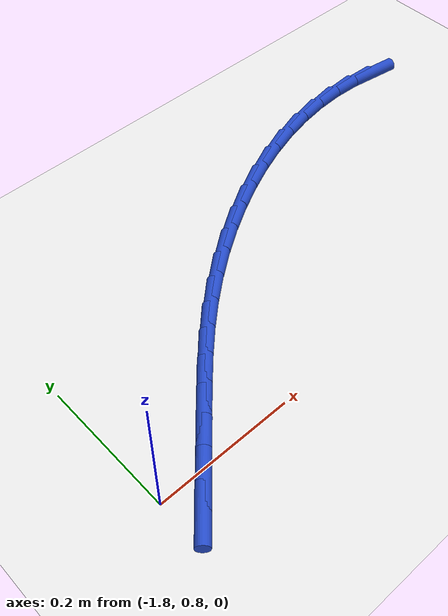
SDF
<sdf version="1.6">
 <world name="default">
  <model name="ground_plane">
   <static>1</static>
   <link name="link">
    <collision name="collision">
     <geometry><plane><normal>0 0 1</normal><size>100 100</size></plane></geometry>
     <surface><friction><ode><mu>100</mu><mu2>50</mu2></ode></friction></surface>
    </collision>
    <visual name="visual">
     <cast_shadows>0</cast_shadows>
     <geometry><plane><normal>0 0 1</normal><size>100 100</size></plane></geometry>
     <material>
      <script><uri>file://media/materials/scripts/gazebo.material</uri><name>Gazebo/WhiteGlow</name></script>
     </material>
    </visual>
   </link>
  </model>
  <model name="line">
   <link name="link_38">
    <pose>-1.0377735951084934 1.160072336522778 0.01 0 1.57 -0.1422656179847581</pose>
    <collision name="collision">
     <geometry><cylinder><radius>0.01</radius><length>0.08</length></cylinder></geometry>
    </collision>
    <visual name="visual">
     <material>
      <script><name>Gazebo/Blue</name><uri>file://media/materials/scripts/gazebo.material</uri></script>
     </material>
     <geometry><cylinder><radius>0.01</radius><length>0.08</length></cylinder></geometry>
    </visual>
   </link>
   <link name="link_39">
    <pose>-1.0797187879673418 1.1660802827238308 0.01 0 1.57 -0.037565053827910075</pose>
    <collision name="collision">
     <geometry><cylinder><radius>0.01</radius><length>0.08</length></cylinder></geometry>
    </collision>
    <visual name="visual">
     <material>
      <script><name>Gazebo/Blue</name><uri>file://media/materials/scripts/gazebo.material</uri></script>
     </material>
     <geometry><cylinder><radius>0.01</radius><length>0.08</length></cylinder></geometry>
    </visual>
   </link>
   <link name="link_40">
    <pose>-1.1223175922608086 1.167681262236125 0.01 0 1.57 0.05868972124511242</pose>
    <collision name="collision">
     <geometry><cylinder><radius>0.01</radius><length>0.08</length></cylinder></geometry>
    </collision>
    <visual name="visual">
     <material>
      <script><name>Gazebo/Blue</name><uri>file://media/materials/scripts/gazebo.material</uri></script>
     </material>
     <geometry><cylinder><radius>0.01</radius><length>0.08</length></cylinder></geometry>
    </visual>
   </link>
   <link name="link_41">
    <pose>-1.165336644057373 1.1651535832285251 0.01 0 1.57 0.146560812369361</pose>
    <collision name="collision">
     <geometry><cylinder><radius>0.01</radius><length>0.08</length></cylinder></geometry>
    </collision>
    <visual name="visual">
     <material>
      <script><name>Gazebo/Blue</name><uri>file://media/materials/scripts/gazebo.material</uri></script>
     </material>
     <geometry><cylinder><radius>0.01</radius><length>0.08</length></cylinder></geometry>
    </visual>
   </link>
   <link name="link_42">
    <pose>-1.2085425794255127 1.158775553869897 0.01 0 1.57 0.2265831939596096</pose>
    <collision name="collision">
     <geometry><cylinder><radius>0.01</radius><length>0.08</length></cylinder></geometry>
    </collision>
    <visual name="visual">
     <material>
      <script><name>Gazebo/Blue</name><uri>file://media/materials/scripts/gazebo.material</uri></script>
     </material>
     <geometry><cylinder><radius>0.01</radius><length>0.08</length></cylinder></geometry>
    </visual>
   </link>
   <link name="link_43">
    <pose>-1.2517020344337073 1.1488254823291062 0.01 0 1.57 0.29956547524877053</pose>
    <collision name="collision">
     <geometry><cylinder><radius>0.01</radius><length>0.08</length></cylinder></geometry>
    </collision>
    <visual name="visual">
     <material>
      <script><name>Gazebo/Blue</name><uri>file://media/materials/scripts/gazebo.material</uri></script>
     </material>
     <geometry><cylinder><radius>0.01</radius><length>0.08</length></cylinder></geometry>
    </visual>
   </link>
   <link name="link_44">
    <pose>-1.2945816451504368 1.1355816767750189 0.01 0 1.57 0.36644288319329077</pose>
    <collision name="collision">
     <geometry><cylinder><radius>0.01</radius><length>0.08</length></cylinder></geometry>
    </collision>
    <visual name="visual">
     <material>
      <script><name>Gazebo/Blue</name><uri>file://media/materials/scripts/gazebo.material</uri></script>
     </material>
     <geometry><cylinder><radius>0.01</radius><length>0.08</length></cylinder></geometry>
    </visual>
   </link>
   <link name="link_45">
    <pose>-1.3369480476441784 1.1193224453765 0.01 0 1.57 0.42818445335033456</pose>
    <collision name="collision">
     <geometry><cylinder><radius>0.01</radius><length>0.08</length></cylinder></geometry>
    </collision>
    <visual name="visual">
     <material>
      <script><name>Gazebo/Blue</name><uri>file://media/materials/scripts/gazebo.material</uri></script>
     </material>
     <geometry><cylinder><radius>0.01</radius><length>0.08</length></cylinder></geometry>
    </visual>
   </link>
   <link name="link_46">
    <pose>-1.378567877983412 1.100326096302415 0.01 0 1.57 0.48574382314129827</pose>
    <collision name="collision">
     <geometry><cylinder><radius>0.01</radius><length>0.08</length></cylinder></geometry>
    </collision>
    <visual name="visual">
     <material>
      <script><name>Gazebo/Blue</name><uri>file://media/materials/scripts/gazebo.material</uri></script>
     </material>
     <geometry><cylinder><radius>0.01</radius><length>0.08</length></cylinder></geometry>
    </visual>
   </link>
   <link name="link_47">
    <pose>-1.4192077722366159 1.07887093772163 0.01 0 1.57 0.5400408883932873</pose>
    <collision name="collision">
     <geometry><cylinder><radius>0.01</radius><length>0.08</length></cylinder></geometry>
    </collision>
    <visual name="visual">
     <material>
      <script><name>Gazebo/Blue</name><uri>file://media/materials/scripts/gazebo.material</uri></script>
     </material>
     <geometry><cylinder><radius>0.01</radius><length>0.08</length></cylinder></geometry>
    </visual>
   </link>
   <link name="link_48">
    <pose>-1.4586343664722698 1.05523527780301 0.01 0 1.57 0.5919640210015958</pose>
    <collision name="collision">
     <geometry><cylinder><radius>0.01</radius><length>0.08</length></cylinder></geometry>
    </collision>
    <visual name="visual">
     <material>
      <script><name>Gazebo/Blue</name><uri>file://media/materials/scripts/gazebo.material</uri></script>
     </material>
     <geometry><cylinder><radius>0.01</radius><length>0.08</length></cylinder></geometry>
    </visual>
   </link>
   <link name="link_49">
    <pose>-1.4966142967588516 1.0296974247154211 0.01 0 1.57 0.6423861035709708</pose>
    <collision name="collision">
     <geometry><cylinder><radius>0.01</radius><length>0.08</length></cylinder></geometry>
    </collision>
    <visual name="visual">
     <material>
      <script><name>Gazebo/Blue</name><uri>file://media/materials/scripts/gazebo.material</uri></script>
     </material>
     <geometry><cylinder><radius>0.01</radius><length>0.08</length></cylinder></geometry>
    </visual>
   </link>
   <link name="link_50">
    <pose>-1.532914199164841 1.0025356866277286 0.01 0 1.57 0.6921909143759554</pose>
    <collision name="collision">
     <geometry><cylinder><radius>0.01</radius><length>0.08</length></cylinder></geometry>
    </collision>
    <visual name="visual">
     <material>
      <script><name>Gazebo/Blue</name><uri>file://media/materials/scripts/gazebo.material</uri></script>
     </material>
     <geometry><cylinder><radius>0.01</radius><length>0.08</length></cylinder></geometry>
    </visual>
   </link>
   <link name="link_51">
    <pose>-1.5673007097587162 0.9740283717087979 0.01 0 1.57 0.7418429253149657</pose>
    <collision name="collision">
     <geometry><cylinder><radius>0.01</radius><length>0.08</length></cylinder></geometry>
    </collision>
    <visual name="visual">
     <material>
      <script><name>Gazebo/Blue</name><uri>file://media/materials/scripts/gazebo.material</uri></script>
     </material>
     <geometry><cylinder><radius>0.01</radius><length>0.08</length></cylinder></geometry>
    </visual>
   </link>
   <link name="link_52">
    <pose>-1.5995767513322727 0.9444481973041711 0.01 0 1.57 0.785534623938228</pose>
    <collision name="collision">
     <geometry><cylinder><radius>0.01</radius><length>0.08</length></cylinder></geometry>
    </collision>
    <visual name="visual">
     <material>
      <script><name>Gazebo/Blue</name><uri>file://media/materials/scripts/gazebo.material</uri></script>
     </material>
     <geometry><cylinder><radius>0.01</radius><length>0.08</length></cylinder></geometry>
    </visual>
   </link>
   <link name="link_53">
    <pose>-1.6300222513085243 0.9139943869750505 0.01 0 1.57 0.8176490082176219</pose>
    <collision name="collision">
     <geometry><cylinder><radius>0.01</radius><length>0.08</length></cylinder></geometry>
    </collision>
    <visual name="visual">
     <material>
      <script><name>Gazebo/Blue</name><uri>file://media/materials/scripts/gazebo.material</uri></script>
     </material>
     <geometry><cylinder><radius>0.01</radius><length>0.08</length></cylinder></geometry>
    </visual>
   </link>
   <link name="link_54">
    <pose>-1.6592532820447115 0.8828143732481583 0.01 0 1.57 0.837011709031941</pose>
    <collision name="collision">
     <geometry><cylinder><radius>0.01</radius><length>0.08</length></cylinder></geometry>
    </collision>
    <visual name="visual">
     <material>
      <script><name>Gazebo/Blue</name><uri>file://media/materials/scripts/gazebo.material</uri></script>
     </material>
     <geometry><cylinder><radius>0.01</radius><length>0.08</length></cylinder></geometry>
    </visual>
   </link>
   <link name="link_55">
    <pose>-1.6878929444743165 0.851054505732709 0.01 0 1.57 0.8431993129954104</pose>
    <collision name="collision">
     <geometry><cylinder><radius>0.01</radius><length>0.08</length></cylinder></geometry>
    </collision>
    <visual name="visual">
     <material>
      <script><name>Gazebo/Blue</name><uri>file://media/materials/scripts/gazebo.material</uri></script>
     </material>
     <geometry><cylinder><radius>0.01</radius><length>0.08</length></cylinder></geometry>
    </visual>
   </link>
   <link name="link_56">
    <pose>-1.7165643395308186 0.818861134037916 0.01 0 1.57 0.839341410173947</pose>
    <collision name="collision">
     <geometry><cylinder><radius>0.01</radius><length>0.08</length></cylinder></geometry>
    </collision>
    <visual name="visual">
     <material>
      <script><name>Gazebo/Blue</name><uri>file://media/materials/scripts/gazebo.material</uri></script>
     </material>
     <geometry><cylinder><radius>0.01</radius><length>0.08</length></cylinder></geometry>
    </visual>
   </link>
   <link name="link_57">
    <pose>-1.745744537843145 0.7863498661139647 0.01 0 1.57 0.8391115784242851</pose>
    <collision name="collision">
     <geometry><cylinder><radius>0.01</radius><length>0.08</length></cylinder></geometry>
    </collision>
    <visual name="visual">
     <material>
      <script><name>Gazebo/Blue</name><uri>file://media/materials/scripts/gazebo.material</uri></script>
     </material>
     <geometry><cylinder><radius>0.01</radius><length>0.08</length></cylinder></geometry>
    </visual>
   </link>
   <link name="link_58">
    <pose>-1.7752455880747513 0.7534963124045471 0.01 0 1.57 0.8461688934546002</pose>
    <collision name="collision">
     <geometry><cylinder><radius>0.01</radius><length>0.08</length></cylinder></geometry>
    </collision>
    <visual name="visual">
     <material>
      <script><name>Gazebo/Blue</name><uri>file://media/materials/scripts/gazebo.material</uri></script>
     </material>
     <geometry><cylinder><radius>0.01</radius><length>0.08</length></cylinder></geometry>
    </visual>
   </link>
  </model>
 </world>
</sdf>
